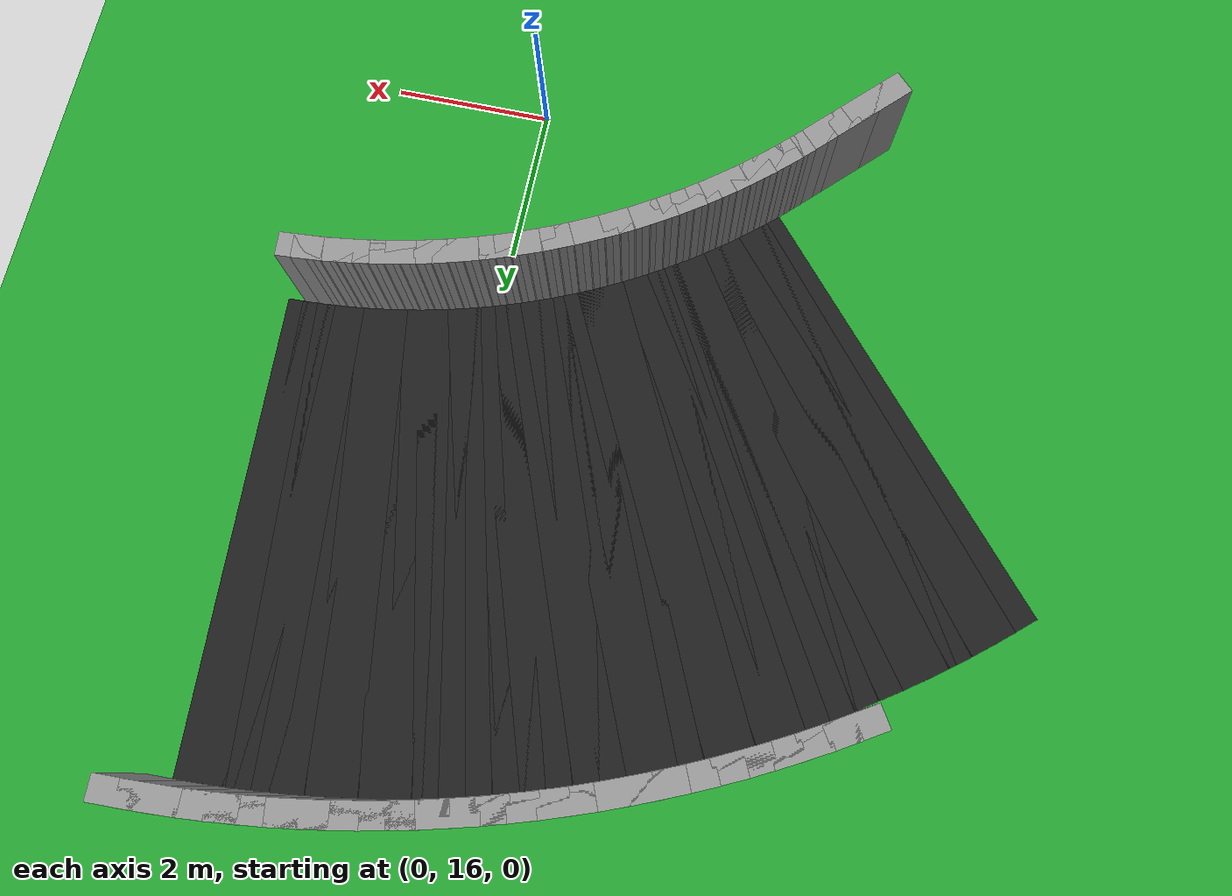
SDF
<sdf version="1.6">
 <world name="obstacle_asymturn">
  <include><uri>model://sun</uri></include>
  <model name="ground_plane">
   <static>true</static>
   <link name="link">
    <collision name="collision">
     <surface><friction><ode><mu>100</mu><mu2>50</mu2></ode></friction></surface>
     <geometry><plane><normal>0 0 1</normal><size>120 120</size></plane></geometry>
    </collision>
    <visual name="visual">
     <geometry><plane><normal>0 0 1</normal><size>120 120</size></plane></geometry>
     <material>
      <script><uri>file://media/materials/scripts/gazebo.material</uri><name>Gazebo/Green</name></script>
     </material>
    </visual>
   </link>
  </model>
  <model name="curbR_334">
   <static>true</static>
   <pose>2.359 25.305 0.750 0 0 -3.11059</pose>
   <link name="link">
    <collision name="collision"><geometry><box><size>0.673 0.300 1.500</size></box></geometry></collision>
    <visual name="visual">
     <geometry><box><size>0.673 0.300 1.500</size></box></geometry>
     <material>
      <script><uri>file://media/materials/scripts/gazebo.material</uri><name>Gazebo/Grey</name></script>
     </material>
    </visual>
   </link>
  </model>
  <model name="asphalt_335">
   <static>true</static>
   <pose>2.209 22.146 0.005 0 0 -3.08992</pose>
   <link name="link">
    <visual name="visual">
     <geometry><box><size>0.608 6.000 0.010</size></box></geometry>
     <material>
      <script><uri>file://media/materials/scripts/gazebo.material</uri><name>Gazebo/Black</name></script>
     </material>
    </visual>
   </link>
  </model>
  <model name="curbR_335">
   <static>true</static>
   <pose>2.046 25.292 0.750 0 0 -3.08992</pose>
   <link name="link">
    <collision name="collision"><geometry><box><size>0.673 0.300 1.500</size></box></geometry></collision>
    <visual name="visual">
     <geometry><box><size>0.673 0.300 1.500</size></box></geometry>
     <material>
      <script><uri>file://media/materials/scripts/gazebo.material</uri><name>Gazebo/Grey</name></script>
     </material>
    </visual>
   </link>
  </model>
  <model name="asphalt_336">
   <static>true</static>
   <pose>1.961 22.131 0.005 0 0 -3.06925</pose>
   <link name="link">
    <visual name="visual">
     <geometry><box><size>0.608 6.000 0.010</size></box></geometry>
     <material>
      <script><uri>file://media/materials/scripts/gazebo.material</uri><name>Gazebo/Black</name></script>
     </material>
    </visual>
   </link>
  </model>
  <model name="curbL_336">
   <static>true</static>
   <pose>2.189 18.989 0.750 0 0 -3.06925</pose>
   <link name="link">
    <collision name="collision"><geometry><box><size>0.543 0.300 1.500</size></box></geometry></collision>
    <visual name="visual">
     <geometry><box><size>0.543 0.300 1.500</size></box></geometry>
     <material>
      <script><uri>file://media/materials/scripts/gazebo.material</uri><name>Gazebo/Grey</name></script>
     </material>
    </visual>
   </link>
  </model>
  <model name="curbR_336">
   <static>true</static>
   <pose>1.733 25.273 0.750 0 0 -3.06925</pose>
   <link name="link">
    <collision name="collision"><geometry><box><size>0.673 0.300 1.500</size></box></geometry></collision>
    <visual name="visual">
     <geometry><box><size>0.673 0.300 1.500</size></box></geometry>
     <material>
      <script><uri>file://media/materials/scripts/gazebo.material</uri><name>Gazebo/Grey</name></script>
     </material>
    </visual>
   </link>
  </model>
  <model name="asphalt_337">
   <static>true</static>
   <pose>1.714 22.111 0.005 0 0 -3.04858</pose>
   <link name="link">
    <visual name="visual">
     <geometry><box><size>0.608 6.000 0.010</size></box></geometry>
     <material>
      <script><uri>file://media/materials/scripts/gazebo.material</uri><name>Gazebo/Black</name></script>
     </material>
    </visual>
   </link>
  </model>
  <model name="curbL_337">
   <static>true</static>
   <pose>2.007 18.974 0.750 0 0 -3.04858</pose>
   <link name="link">
    <collision name="collision"><geometry><box><size>0.543 0.300 1.500</size></box></geometry></collision>
    <visual name="visual">
     <geometry><box><size>0.543 0.300 1.500</size></box></geometry>
     <material>
      <script><uri>file://media/materials/scripts/gazebo.material</uri><name>Gazebo/Grey</name></script>
     </material>
    </visual>
   </link>
  </model>
  <model name="curbR_337">
   <static>true</static>
   <pose>1.421 25.247 0.750 0 0 -3.04858</pose>
   <link name="link">
    <collision name="collision"><geometry><box><size>0.673 0.300 1.500</size></box></geometry></collision>
    <visual name="visual">
     <geometry><box><size>0.673 0.300 1.500</size></box></geometry>
     <material>
      <script><uri>file://media/materials/scripts/gazebo.material</uri><name>Gazebo/Grey</name></script>
     </material>
    </visual>
   </link>
  </model>
  <model name="asphalt_338">
   <static>true</static>
   <pose>1.467 22.085 0.005 0 0 -3.02792</pose>
   <link name="link">
    <visual name="visual">
     <geometry><box><size>0.608 6.000 0.010</size></box></geometry>
     <material>
      <script><uri>file://media/materials/scripts/gazebo.material</uri><name>Gazebo/Black</name></script>
     </material>
    </visual>
   </link>
  </model>
  <model name="curbL_338">
   <static>true</static>
   <pose>1.825 18.955 0.750 0 0 -3.02792</pose>
   <link name="link">
    <collision name="collision"><geometry><box><size>0.543 0.300 1.500</size></box></geometry></collision>
    <visual name="visual">
     <geometry><box><size>0.543 0.300 1.500</size></box></geometry>
     <material>
      <script><uri>file://media/materials/scripts/gazebo.material</uri><name>Gazebo/Grey</name></script>
     </material>
    </visual>
   </link>
  </model>
  <model name="curbR_338">
   <static>true</static>
   <pose>1.110 25.214 0.750 0 0 -3.02792</pose>
   <link name="link">
    <collision name="collision"><geometry><box><size>0.673 0.300 1.500</size></box></geometry></collision>
    <visual name="visual">
     <geometry><box><size>0.673 0.300 1.500</size></box></geometry>
     <material>
      <script><uri>file://media/materials/scripts/gazebo.material</uri><name>Gazebo/Grey</name></script>
     </material>
    </visual>
   </link>
  </model>
  <model name="asphalt_339">
   <static>true</static>
   <pose>1.221 22.054 0.005 0 0 -3.00725</pose>
   <link name="link">
    <visual name="visual">
     <geometry><box><size>0.608 6.000 0.010</size></box></geometry>
     <material>
      <script><uri>file://media/materials/scripts/gazebo.material</uri><name>Gazebo/Black</name></script>
     </material>
    </visual>
   </link>
  </model>
  <model name="curbL_339">
   <static>true</static>
   <pose>1.643 18.933 0.750 0 0 -3.00725</pose>
   <link name="link">
    <collision name="collision"><geometry><box><size>0.543 0.300 1.500</size></box></geometry></collision>
    <visual name="visual">
     <geometry><box><size>0.543 0.300 1.500</size></box></geometry>
     <material>
      <script><uri>file://media/materials/scripts/gazebo.material</uri><name>Gazebo/Grey</name></script>
     </material>
    </visual>
   </link>
  </model>
  <model name="curbR_339">
   <static>true</static>
   <pose>0.799 25.176 0.750 0 0 -3.00725</pose>
   <link name="link">
    <collision name="collision"><geometry><box><size>0.673 0.300 1.500</size></box></geometry></collision>
    <visual name="visual">
     <geometry><box><size>0.673 0.300 1.500</size></box></geometry>
     <material>
      <script><uri>file://media/materials/scripts/gazebo.material</uri><name>Gazebo/Grey</name></script>
     </material>
    </visual>
   </link>
  </model>
  <model name="asphalt_340">
   <static>true</static>
   <pose>0.976 22.018 0.005 0 0 -2.98658</pose>
   <link name="link">
    <visual name="visual">
     <geometry><box><size>0.608 6.000 0.010</size></box></geometry>
     <material>
      <script><uri>file://media/materials/scripts/gazebo.material</uri><name>Gazebo/Black</name></script>
     </material>
    </visual>
   </link>
  </model>
  <model name="curbL_340">
   <static>true</static>
   <pose>1.462 18.906 0.750 0 0 -2.98658</pose>
   <link name="link">
    <collision name="collision"><geometry><box><size>0.543 0.300 1.500</size></box></geometry></collision>
    <visual name="visual">
     <geometry><box><size>0.543 0.300 1.500</size></box></geometry>
     <material>
      <script><uri>file://media/materials/scripts/gazebo.material</uri><name>Gazebo/Grey</name></script>
     </material>
    </visual>
   </link>
  </model>
  <model name="curbR_340">
   <static>true</static>
   <pose>0.489 25.131 0.750 0 0 -2.98658</pose>
   <link name="link">
    <collision name="collision"><geometry><box><size>0.673 0.300 1.500</size></box></geometry></collision>
    <visual name="visual">
     <geometry><box><size>0.673 0.300 1.500</size></box></geometry>
     <material>
      <script><uri>file://media/materials/scripts/gazebo.material</uri><name>Gazebo/Grey</name></script>
     </material>
    </visual>
   </link>
  </model>
  <model name="asphalt_341">
   <static>true</static>
   <pose>0.731 21.978 0.005 0 0 -2.96591</pose>
   <link name="link">
    <visual name="visual">
     <geometry><box><size>0.608 6.000 0.010</size></box></geometry>
     <material>
      <script><uri>file://media/materials/scripts/gazebo.material</uri><name>Gazebo/Black</name></script>
     </material>
    </visual>
   </link>
  </model>
  <model name="curbL_341">
   <static>true</static>
   <pose>1.282 18.876 0.750 0 0 -2.96591</pose>
   <link name="link">
    <collision name="collision"><geometry><box><size>0.543 0.300 1.500</size></box></geometry></collision>
    <visual name="visual">
     <geometry><box><size>0.543 0.300 1.500</size></box></geometry>
     <material>
      <script><uri>file://media/materials/scripts/gazebo.material</uri><name>Gazebo/Grey</name></script>
     </material>
    </visual>
   </link>
  </model>
  <model name="curbR_341">
   <static>true</static>
   <pose>0.181 25.079 0.750 0 0 -2.96591</pose>
   <link name="link">
    <collision name="collision"><geometry><box><size>0.673 0.300 1.500</size></box></geometry></collision>
    <visual name="visual">
     <geometry><box><size>0.673 0.300 1.500</size></box></geometry>
     <material>
      <script><uri>file://media/materials/scripts/gazebo.material</uri><name>Gazebo/Grey</name></script>
     </material>
    </visual>
   </link>
  </model>
  <model name="asphalt_342">
   <static>true</static>
   <pose>0.487 21.932 0.005 0 0 -2.94524</pose>
   <link name="link">
    <visual name="visual">
     <geometry><box><size>0.608 6.000 0.010</size></box></geometry>
     <material>
      <script><uri>file://media/materials/scripts/gazebo.material</uri><name>Gazebo/Black</name></script>
     </material>
    </visual>
   </link>
  </model>
  <model name="curbL_342">
   <static>true</static>
   <pose>1.102 18.842 0.750 0 0 -2.94524</pose>
   <link name="link">
    <collision name="collision"><geometry><box><size>0.543 0.300 1.500</size></box></geometry></collision>
    <visual name="visual">
     <geometry><box><size>0.543 0.300 1.500</size></box></geometry>
     <material>
      <script><uri>file://media/materials/scripts/gazebo.material</uri><name>Gazebo/Grey</name></script>
     </material>
    </visual>
   </link>
  </model>
  <model name="curbR_342">
   <static>true</static>
   <pose>-0.127 25.021 0.750 0 0 -2.94524</pose>
   <link name="link">
    <collision name="collision"><geometry><box><size>0.673 0.300 1.500</size></box></geometry></collision>
    <visual name="visual">
     <geometry><box><size>0.673 0.300 1.500</size></box></geometry>
     <material>
      <script><uri>file://media/materials/scripts/gazebo.material</uri><name>Gazebo/Grey</name></script>
     </material>
    </visual>
   </link>
  </model>
  <model name="asphalt_343">
   <static>true</static>
   <pose>0.245 21.881 0.005 0 0 -2.92457</pose>
   <link name="link">
    <visual name="visual">
     <geometry><box><size>0.608 6.000 0.010</size></box></geometry>
     <material>
      <script><uri>file://media/materials/scripts/gazebo.material</uri><name>Gazebo/Black</name></script>
     </material>
    </visual>
   </link>
  </model>
  <model name="curbL_343">
   <static>true</static>
   <pose>0.923 18.805 0.750 0 0 -2.92457</pose>
   <link name="link">
    <collision name="collision"><geometry><box><size>0.543 0.300 1.500</size></box></geometry></collision>
    <visual name="visual">
     <geometry><box><size>0.543 0.300 1.500</size></box></geometry>
     <material>
      <script><uri>file://media/materials/scripts/gazebo.material</uri><name>Gazebo/Grey</name></script>
     </material>
    </visual>
   </link>
  </model>
  <model name="curbR_343">
   <static>true</static>
   <pose>-0.434 24.957 0.750 0 0 -2.92457</pose>
   <link name="link">
    <collision name="collision"><geometry><box><size>0.673 0.300 1.500</size></box></geometry></collision>
    <visual name="visual">
     <geometry><box><size>0.673 0.300 1.500</size></box></geometry>
     <material>
      <script><uri>file://media/materials/scripts/gazebo.material</uri><name>Gazebo/Grey</name></script>
     </material>
    </visual>
   </link>
  </model>
  <model name="asphalt_344">
   <static>true</static>
   <pose>0.003 21.825 0.005 0 0 -2.90391</pose>
   <link name="link">
    <visual name="visual">
     <geometry><box><size>0.608 6.000 0.010</size></box></geometry>
     <material>
      <script><uri>file://media/materials/scripts/gazebo.material</uri><name>Gazebo/Black</name></script>
     </material>
    </visual>
   </link>
  </model>
  <model name="curbL_344">
   <static>true</static>
   <pose>0.745 18.764 0.750 0 0 -2.90391</pose>
   <link name="link">
    <collision name="collision"><geometry><box><size>0.543 0.300 1.500</size></box></geometry></collision>
    <visual name="visual">
     <geometry><box><size>0.543 0.300 1.500</size></box></geometry>
     <material>
      <script><uri>file://media/materials/scripts/gazebo.material</uri><name>Gazebo/Grey</name></script>
     </material>
    </visual>
   </link>
  </model>
  <model name="curbR_344">
   <static>true</static>
   <pose>-0.739 24.886 0.750 0 0 -2.90391</pose>
   <link name="link">
    <collision name="collision"><geometry><box><size>0.673 0.300 1.500</size></box></geometry></collision>
    <visual name="visual">
     <geometry><box><size>0.673 0.300 1.500</size></box></geometry>
     <material>
      <script><uri>file://media/materials/scripts/gazebo.material</uri><name>Gazebo/Grey</name></script>
     </material>
    </visual>
   </link>
  </model>
  <model name="asphalt_345">
   <static>true</static>
   <pose>-0.237 21.764 0.005 0 0 -2.88324</pose>
   <link name="link">
    <visual name="visual">
     <geometry><box><size>0.608 6.000 0.010</size></box></geometry>
     <material>
      <script><uri>file://media/materials/scripts/gazebo.material</uri><name>Gazebo/Black</name></script>
     </material>
    </visual>
   </link>
  </model>
  <model name="curbL_345">
   <static>true</static>
   <pose>0.567 18.719 0.750 0 0 -2.88324</pose>
   <link name="link">
    <collision name="collision"><geometry><box><size>0.543 0.300 1.500</size></box></geometry></collision>
    <visual name="visual">
     <geometry><box><size>0.543 0.300 1.500</size></box></geometry>
     <material>
      <script><uri>file://media/materials/scripts/gazebo.material</uri><name>Gazebo/Grey</name></script>
     </material>
    </visual>
   </link>
  </model>
  <model name="curbR_345">
   <static>true</static>
   <pose>-1.042 24.809 0.750 0 0 -2.88324</pose>
   <link name="link">
    <collision name="collision"><geometry><box><size>0.673 0.300 1.500</size></box></geometry></collision>
    <visual name="visual">
     <geometry><box><size>0.673 0.300 1.500</size></box></geometry>
     <material>
      <script><uri>file://media/materials/scripts/gazebo.material</uri><name>Gazebo/Grey</name></script>
     </material>
    </visual>
   </link>
  </model>
  <model name="asphalt_346">
   <static>true</static>
   <pose>-0.476 21.698 0.005 0 0 -2.86257</pose>
   <link name="link">
    <visual name="visual">
     <geometry><box><size>0.608 6.000 0.010</size></box></geometry>
     <material>
      <script><uri>file://media/materials/scripts/gazebo.material</uri><name>Gazebo/Black</name></script>
     </material>
    </visual>
   </link>
  </model>
  <model name="curbL_346">
   <static>true</static>
   <pose>0.391 18.670 0.750 0 0 -2.86257</pose>
   <link name="link">
    <collision name="collision"><geometry><box><size>0.543 0.300 1.500</size></box></geometry></collision>
    <visual name="visual">
     <geometry><box><size>0.543 0.300 1.500</size></box></geometry>
     <material>
      <script><uri>file://media/materials/scripts/gazebo.material</uri><name>Gazebo/Grey</name></script>
     </material>
    </visual>
   </link>
  </model>
  <model name="curbR_346">
   <static>true</static>
   <pose>-1.344 24.726 0.750 0 0 -2.86257</pose>
   <link name="link">
    <collision name="collision"><geometry><box><size>0.673 0.300 1.500</size></box></geometry></collision>
    <visual name="visual">
     <geometry><box><size>0.673 0.300 1.500</size></box></geometry>
     <material>
      <script><uri>file://media/materials/scripts/gazebo.material</uri><name>Gazebo/Grey</name></script>
     </material>
    </visual>
   </link>
  </model>
  <model name="asphalt_347">
   <static>true</static>
   <pose>-0.714 21.628 0.005 0 0 -2.84190</pose>
   <link name="link">
    <visual name="visual">
     <geometry><box><size>0.608 6.000 0.010</size></box></geometry>
     <material>
      <script><uri>file://media/materials/scripts/gazebo.material</uri><name>Gazebo/Black</name></script>
     </material>
    </visual>
   </link>
  </model>
  <model name="curbL_347">
   <static>true</static>
   <pose>0.216 18.618 0.750 0 0 -2.84190</pose>
   <link name="link">
    <collision name="collision"><geometry><box><size>0.543 0.300 1.500</size></box></geometry></collision>
    <visual name="visual">
     <geometry><box><size>0.543 0.300 1.500</size></box></geometry>
     <material>
      <script><uri>file://media/materials/scripts/gazebo.material</uri><name>Gazebo/Grey</name></script>
     </material>
    </visual>
   </link>
  </model>
  <model name="curbR_347">
   <static>true</static>
   <pose>-1.644 24.637 0.750 0 0 -2.84190</pose>
   <link name="link">
    <collision name="collision"><geometry><box><size>0.673 0.300 1.500</size></box></geometry></collision>
    <visual name="visual">
     <geometry><box><size>0.673 0.300 1.500</size></box></geometry>
     <material>
      <script><uri>file://media/materials/scripts/gazebo.material</uri><name>Gazebo/Grey</name></script>
     </material>
    </visual>
   </link>
  </model>
  <model name="asphalt_348">
   <static>true</static>
   <pose>-0.950 21.552 0.005 0 0 -2.82123</pose>
   <link name="link">
    <visual name="visual">
     <geometry><box><size>0.608 6.000 0.010</size></box></geometry>
     <material>
      <script><uri>file://media/materials/scripts/gazebo.material</uri><name>Gazebo/Black</name></script>
     </material>
    </visual>
   </link>
  </model>
  <model name="curbL_348">
   <static>true</static>
   <pose>0.042 18.562 0.750 0 0 -2.82123</pose>
   <link name="link">
    <collision name="collision"><geometry><box><size>0.543 0.300 1.500</size></box></geometry></collision>
    <visual name="visual">
     <geometry><box><size>0.543 0.300 1.500</size></box></geometry>
     <material>
      <script><uri>file://media/materials/scripts/gazebo.material</uri><name>Gazebo/Grey</name></script>
     </material>
    </visual>
   </link>
  </model>
  <model name="curbR_348">
   <static>true</static>
   <pose>-1.942 24.541 0.750 0 0 -2.82123</pose>
   <link name="link">
    <collision name="collision"><geometry><box><size>0.673 0.300 1.500</size></box></geometry></collision>
    <visual name="visual">
     <geometry><box><size>0.673 0.300 1.500</size></box></geometry>
     <material>
      <script><uri>file://media/materials/scripts/gazebo.material</uri><name>Gazebo/Grey</name></script>
     </material>
    </visual>
   </link>
  </model>
  <model name="asphalt_349">
   <static>true</static>
   <pose>-1.185 21.471 0.005 0 0 -2.80056</pose>
   <link name="link">
    <visual name="visual">
     <geometry><box><size>0.608 6.000 0.010</size></box></geometry>
     <material>
      <script><uri>file://media/materials/scripts/gazebo.material</uri><name>Gazebo/Black</name></script>
     </material>
    </visual>
   </link>
  </model>
  <model name="curbL_349">
   <static>true</static>
   <pose>-0.131 18.503 0.750 0 0 -2.80056</pose>
   <link name="link">
    <collision name="collision"><geometry><box><size>0.543 0.300 1.500</size></box></geometry></collision>
    <visual name="visual">
     <geometry><box><size>0.543 0.300 1.500</size></box></geometry>
     <material>
      <script><uri>file://media/materials/scripts/gazebo.material</uri><name>Gazebo/Grey</name></script>
     </material>
    </visual>
   </link>
  </model>
  <model name="curbR_349">
   <static>true</static>
   <pose>-2.238 24.440 0.750 0 0 -2.80056</pose>
   <link name="link">
    <collision name="collision"><geometry><box><size>0.673 0.300 1.500</size></box></geometry></collision>
    <visual name="visual">
     <geometry><box><size>0.673 0.300 1.500</size></box></geometry>
     <material>
      <script><uri>file://media/materials/scripts/gazebo.material</uri><name>Gazebo/Grey</name></script>
     </material>
    </visual>
   </link>
  </model>
  <model name="asphalt_350">
   <static>true</static>
   <pose>-1.418 21.386 0.005 0 0 -2.77990</pose>
   <link name="link">
    <visual name="visual">
     <geometry><box><size>0.608 6.000 0.010</size></box></geometry>
     <material>
      <script><uri>file://media/materials/scripts/gazebo.material</uri><name>Gazebo/Black</name></script>
     </material>
    </visual>
   </link>
  </model>
  <model name="curbL_350">
   <static>true</static>
   <pose>-0.303 18.440 0.750 0 0 -2.77990</pose>
   <link name="link">
    <collision name="collision"><geometry><box><size>0.543 0.300 1.500</size></box></geometry></collision>
    <visual name="visual">
     <geometry><box><size>0.543 0.300 1.500</size></box></geometry>
     <material>
      <script><uri>file://media/materials/scripts/gazebo.material</uri><name>Gazebo/Grey</name></script>
     </material>
    </visual>
   </link>
  </model>
  <model name="curbR_350">
   <static>true</static>
   <pose>-2.532 24.332 0.750 0 0 -2.77990</pose>
   <link name="link">
    <collision name="collision"><geometry><box><size>0.673 0.300 1.500</size></box></geometry></collision>
    <visual name="visual">
     <geometry><box><size>0.673 0.300 1.500</size></box></geometry>
     <material>
      <script><uri>file://media/materials/scripts/gazebo.material</uri><name>Gazebo/Grey</name></script>
     </material>
    </visual>
   </link>
  </model>
  <model name="asphalt_351">
   <static>true</static>
   <pose>-1.649 21.296 0.005 0 0 -2.75923</pose>
   <link name="link">
    <visual name="visual">
     <geometry><box><size>0.608 6.000 0.010</size></box></geometry>
     <material>
      <script><uri>file://media/materials/scripts/gazebo.material</uri><name>Gazebo/Black</name></script>
     </material>
    </visual>
   </link>
  </model>
  <model name="curbL_351">
   <static>true</static>
   <pose>-0.474 18.373 0.750 0 0 -2.75923</pose>
   <link name="link">
    <collision name="collision"><geometry><box><size>0.543 0.300 1.500</size></box></geometry></collision>
    <visual name="visual">
     <geometry><box><size>0.543 0.300 1.500</size></box></geometry>
     <material>
      <script><uri>file://media/materials/scripts/gazebo.material</uri><name>Gazebo/Grey</name></script>
     </material>
    </visual>
   </link>
  </model>
  <model name="curbR_351">
   <static>true</static>
   <pose>-2.824 24.218 0.750 0 0 -2.75923</pose>
   <link name="link">
    <collision name="collision"><geometry><box><size>0.673 0.300 1.500</size></box></geometry></collision>
    <visual name="visual">
     <geometry><box><size>0.673 0.300 1.500</size></box></geometry>
     <material>
      <script><uri>file://media/materials/scripts/gazebo.material</uri><name>Gazebo/Grey</name></script>
     </material>
    </visual>
   </link>
  </model>
  <model name="asphalt_352">
   <static>true</static>
   <pose>-1.878 21.201 0.005 0 0 -2.73856</pose>
   <link name="link">
    <visual name="visual">
     <geometry><box><size>0.608 6.000 0.010</size></box></geometry>
     <material>
      <script><uri>file://media/materials/scripts/gazebo.material</uri><name>Gazebo/Black</name></script>
     </material>
    </visual>
   </link>
  </model>
  <model name="curbL_352">
   <static>true</static>
   <pose>-0.643 18.303 0.750 0 0 -2.73856</pose>
   <link name="link">
    <collision name="collision"><geometry><box><size>0.543 0.300 1.500</size></box></geometry></collision>
    <visual name="visual">
     <geometry><box><size>0.543 0.300 1.500</size></box></geometry>
     <material>
      <script><uri>file://media/materials/scripts/gazebo.material</uri><name>Gazebo/Grey</name></script>
     </material>
    </visual>
   </link>
  </model>
  <model name="curbR_352">
   <static>true</static>
   <pose>-3.113 24.098 0.750 0 0 -2.73856</pose>
   <link name="link">
    <collision name="collision"><geometry><box><size>0.673 0.300 1.500</size></box></geometry></collision>
    <visual name="visual">
     <geometry><box><size>0.673 0.300 1.500</size></box></geometry>
     <material>
      <script><uri>file://media/materials/scripts/gazebo.material</uri><name>Gazebo/Grey</name></script>
     </material>
    </visual>
   </link>
  </model>
  <model name="asphalt_353">
   <static>true</static>
   <pose>-2.105 21.101 0.005 0 0 -2.71789</pose>
   <link name="link">
    <visual name="visual">
     <geometry><box><size>0.608 6.000 0.010</size></box></geometry>
     <material>
      <script><uri>file://media/materials/scripts/gazebo.material</uri><name>Gazebo/Black</name></script>
     </material>
    </visual>
   </link>
  </model>
  <model name="curbL_353">
   <static>true</static>
   <pose>-0.810 18.230 0.750 0 0 -2.71789</pose>
   <link name="link">
    <collision name="collision"><geometry><box><size>0.543 0.300 1.500</size></box></geometry></collision>
    <visual name="visual">
     <geometry><box><size>0.543 0.300 1.500</size></box></geometry>
     <material>
      <script><uri>file://media/materials/scripts/gazebo.material</uri><name>Gazebo/Grey</name></script>
     </material>
    </visual>
   </link>
  </model>
  <model name="curbR_353">
   <static>true</static>
   <pose>-3.400 23.973 0.750 0 0 -2.71789</pose>
   <link name="link">
    <collision name="collision"><geometry><box><size>0.673 0.300 1.500</size></box></geometry></collision>
    <visual name="visual">
     <geometry><box><size>0.673 0.300 1.500</size></box></geometry>
     <material>
      <script><uri>file://media/materials/scripts/gazebo.material</uri><name>Gazebo/Grey</name></script>
     </material>
    </visual>
   </link>
  </model>
  <model name="asphalt_354">
   <static>true</static>
   <pose>-2.330 20.997 0.005 0 0 -2.69722</pose>
   <link name="link">
    <visual name="visual">
     <geometry><box><size>0.608 6.000 0.010</size></box></geometry>
     <material>
      <script><uri>file://media/materials/scripts/gazebo.material</uri><name>Gazebo/Black</name></script>
     </material>
    </visual>
   </link>
  </model>
  <model name="curbL_354">
   <static>true</static>
   <pose>-0.976 18.153 0.750 0 0 -2.69722</pose>
   <link name="link">
    <collision name="collision"><geometry><box><size>0.543 0.300 1.500</size></box></geometry></collision>
    <visual name="visual">
     <geometry><box><size>0.543 0.300 1.500</size></box></geometry>
     <material>
      <script><uri>file://media/materials/scripts/gazebo.material</uri><name>Gazebo/Grey</name></script>
     </material>
    </visual>
   </link>
  </model>
  <model name="curbR_354">
   <static>true</static>
   <pose>-3.684 23.841 0.750 0 0 -2.69722</pose>
   <link name="link">
    <collision name="collision"><geometry><box><size>0.673 0.300 1.500</size></box></geometry></collision>
    <visual name="visual">
     <geometry><box><size>0.673 0.300 1.500</size></box></geometry>
     <material>
      <script><uri>file://media/materials/scripts/gazebo.material</uri><name>Gazebo/Grey</name></script>
     </material>
    </visual>
   </link>
  </model>
  <model name="asphalt_355">
   <static>true</static>
   <pose>-2.553 20.888 0.005 0 0 -2.67655</pose>
   <link name="link">
    <visual name="visual">
     <geometry><box><size>0.608 6.000 0.010</size></box></geometry>
     <material>
      <script><uri>file://media/materials/scripts/gazebo.material</uri><name>Gazebo/Black</name></script>
     </material>
    </visual>
   </link>
  </model>
  <model name="curbL_355">
   <static>true</static>
   <pose>-1.140 18.073 0.750 0 0 -2.67655</pose>
   <link name="link">
    <collision name="collision"><geometry><box><size>0.543 0.300 1.500</size></box></geometry></collision>
    <visual name="visual">
     <geometry><box><size>0.543 0.300 1.500</size></box></geometry>
     <material>
      <script><uri>file://media/materials/scripts/gazebo.material</uri><name>Gazebo/Grey</name></script>
     </material>
    </visual>
   </link>
  </model>
  <model name="curbR_355">
   <static>true</static>
   <pose>-3.965 23.703 0.750 0 0 -2.67655</pose>
   <link name="link">
    <collision name="collision"><geometry><box><size>0.673 0.300 1.500</size></box></geometry></collision>
    <visual name="visual">
     <geometry><box><size>0.673 0.300 1.500</size></box></geometry>
     <material>
      <script><uri>file://media/materials/scripts/gazebo.material</uri><name>Gazebo/Grey</name></script>
     </material>
    </visual>
   </link>
  </model>
  <model name="asphalt_356">
   <static>true</static>
   <pose>-2.773 20.775 0.005 0 0 -2.65589</pose>
   <link name="link">
    <visual name="visual">
     <geometry><box><size>0.608 6.000 0.010</size></box></geometry>
     <material>
      <script><uri>file://media/materials/scripts/gazebo.material</uri><name>Gazebo/Black</name></script>
     </material>
    </visual>
   </link>
  </model>
  <model name="curbL_356">
   <static>true</static>
   <pose>-1.303 17.989 0.750 0 0 -2.65589</pose>
   <link name="link">
    <collision name="collision"><geometry><box><size>0.543 0.300 1.500</size></box></geometry></collision>
    <visual name="visual">
     <geometry><box><size>0.543 0.300 1.500</size></box></geometry>
     <material>
      <script><uri>file://media/materials/scripts/gazebo.material</uri><name>Gazebo/Grey</name></script>
     </material>
    </visual>
   </link>
  </model>
  <model name="curbR_356">
   <static>true</static>
   <pose>-4.244 23.560 0.750 0 0 -2.65589</pose>
   <link name="link">
    <collision name="collision"><geometry><box><size>0.673 0.300 1.500</size></box></geometry></collision>
    <visual name="visual">
     <geometry><box><size>0.673 0.300 1.500</size></box></geometry>
     <material>
      <script><uri>file://media/materials/scripts/gazebo.material</uri><name>Gazebo/Grey</name></script>
     </material>
    </visual>
   </link>
  </model>
  <model name="asphalt_357">
   <static>true</static>
   <pose>-2.991 20.657 0.005 0 0 -2.63522</pose>
   <link name="link">
    <visual name="visual">
     <geometry><box><size>0.608 6.000 0.010</size></box></geometry>
     <material>
      <script><uri>file://media/materials/scripts/gazebo.material</uri><name>Gazebo/Black</name></script>
     </material>
    </visual>
   </link>
  </model>
  <model name="curbL_357">
   <static>true</static>
   <pose>-1.464 17.902 0.750 0 0 -2.63522</pose>
   <link name="link">
    <collision name="collision"><geometry><box><size>0.543 0.300 1.500</size></box></geometry></collision>
    <visual name="visual">
     <geometry><box><size>0.543 0.300 1.500</size></box></geometry>
     <material>
      <script><uri>file://media/materials/scripts/gazebo.material</uri><name>Gazebo/Grey</name></script>
     </material>
    </visual>
   </link>
  </model>
  <model name="curbR_357">
   <static>true</static>
   <pose>-4.519 23.411 0.750 0 0 -2.63522</pose>
   <link name="link">
    <collision name="collision"><geometry><box><size>0.673 0.300 1.500</size></box></geometry></collision>
    <visual name="visual">
     <geometry><box><size>0.673 0.300 1.500</size></box></geometry>
     <material>
      <script><uri>file://media/materials/scripts/gazebo.material</uri><name>Gazebo/Grey</name></script>
     </material>
    </visual>
   </link>
  </model>
  <model name="asphalt_358">
   <static>true</static>
   <pose>-3.207 20.534 0.005 0 0 -2.61455</pose>
   <link name="link">
    <visual name="visual">
     <geometry><box><size>0.608 6.000 0.010</size></box></geometry>
     <material>
      <script><uri>file://media/materials/scripts/gazebo.material</uri><name>Gazebo/Black</name></script>
     </material>
    </visual>
   </link>
  </model>
  <model name="curbL_358">
   <static>true</static>
   <pose>-1.623 17.812 0.750 0 0 -2.61455</pose>
   <link name="link">
    <collision name="collision"><geometry><box><size>0.543 0.300 1.500</size></box></geometry></collision>
    <visual name="visual">
     <geometry><box><size>0.543 0.300 1.500</size></box></geometry>
     <material>
      <script><uri>file://media/materials/scripts/gazebo.material</uri><name>Gazebo/Grey</name></script>
     </material>
    </visual>
   </link>
  </model>
  <model name="curbR_358">
   <static>true</static>
   <pose>-4.791 23.256 0.750 0 0 -2.61455</pose>
   <link name="link">
    <collision name="collision"><geometry><box><size>0.673 0.300 1.500</size></box></geometry></collision>
    <visual name="visual">
     <geometry><box><size>0.673 0.300 1.500</size></box></geometry>
     <material>
      <script><uri>file://media/materials/scripts/gazebo.material</uri><name>Gazebo/Grey</name></script>
     </material>
    </visual>
   </link>
  </model>
  <model name="asphalt_359">
   <static>true</static>
   <pose>-3.420 20.407 0.005 0 0 -2.59388</pose>
   <link name="link">
    <visual name="visual">
     <geometry><box><size>0.608 6.000 0.010</size></box></geometry>
     <material>
      <script><uri>file://media/materials/scripts/gazebo.material</uri><name>Gazebo/Black</name></script>
     </material>
    </visual>
   </link>
  </model>
  <model name="curbL_359">
   <static>true</static>
   <pose>-1.780 17.718 0.750 0 0 -2.59388</pose>
   <link name="link">
    <collision name="collision"><geometry><box><size>0.543 0.300 1.500</size></box></geometry></collision>
    <visual name="visual">
     <geometry><box><size>0.543 0.300 1.500</size></box></geometry>
     <material>
      <script><uri>file://media/materials/scripts/gazebo.material</uri><name>Gazebo/Grey</name></script>
     </material>
    </visual>
   </link>
  </model>
  <model name="curbR_359">
   <static>true</static>
   <pose>-5.060 23.096 0.750 0 0 -2.59388</pose>
   <link name="link">
    <collision name="collision"><geometry><box><size>0.673 0.300 1.500</size></box></geometry></collision>
    <visual name="visual">
     <geometry><box><size>0.673 0.300 1.500</size></box></geometry>
     <material>
      <script><uri>file://media/materials/scripts/gazebo.material</uri><name>Gazebo/Grey</name></script>
     </material>
    </visual>
   </link>
  </model>
  <model name="asphalt_360">
   <static>true</static>
   <pose>-3.631 20.276 0.005 0 0 -2.57321</pose>
   <link name="link">
    <visual name="visual">
     <geometry><box><size>0.608 6.000 0.010</size></box></geometry>
     <material>
      <script><uri>file://media/materials/scripts/gazebo.material</uri><name>Gazebo/Black</name></script>
     </material>
    </visual>
   </link>
  </model>
  <model name="curbL_360">
   <static>true</static>
   <pose>-1.935 17.621 0.750 0 0 -2.57321</pose>
   <link name="link">
    <collision name="collision"><geometry><box><size>0.543 0.300 1.500</size></box></geometry></collision>
    <visual name="visual">
     <geometry><box><size>0.543 0.300 1.500</size></box></geometry>
     <material>
      <script><uri>file://media/materials/scripts/gazebo.material</uri><name>Gazebo/Grey</name></script>
     </material>
    </visual>
   </link>
  </model>
  <model name="asphalt_361">
   <static>true</static>
   <pose>-3.838 20.140 0.005 0 0 -2.55254</pose>
   <link name="link">
    <visual name="visual">
     <geometry><box><size>0.608 6.000 0.010</size></box></geometry>
     <material>
      <script><uri>file://media/materials/scripts/gazebo.material</uri><name>Gazebo/Black</name></script>
     </material>
    </visual>
   </link>
  </model>
  <model name="curbL_361">
   <static>true</static>
   <pose>-2.088 17.521 0.750 0 0 -2.55254</pose>
   <link name="link">
    <collision name="collision"><geometry><box><size>0.543 0.300 1.500</size></box></geometry></collision>
    <visual name="visual">
     <geometry><box><size>0.543 0.300 1.500</size></box></geometry>
     <material>
      <script><uri>file://media/materials/scripts/gazebo.material</uri><name>Gazebo/Grey</name></script>
     </material>
    </visual>
   </link>
  </model>
  <model name="asphalt_362">
   <static>true</static>
   <pose>-4.043 20.000 0.005 0 0 -2.53188</pose>
   <link name="link">
    <visual name="visual">
     <geometry><box><size>0.608 6.000 0.010</size></box></geometry>
     <material>
      <script><uri>file://media/materials/scripts/gazebo.material</uri><name>Gazebo/Black</name></script>
     </material>
    </visual>
   </link>
  </model>
  <model name="curbL_362">
   <static>true</static>
   <pose>-2.239 17.418 0.750 0 0 -2.53188</pose>
   <link name="link">
    <collision name="collision"><geometry><box><size>0.543 0.300 1.500</size></box></geometry></collision>
    <visual name="visual">
     <geometry><box><size>0.543 0.300 1.500</size></box></geometry>
     <material>
      <script><uri>file://media/materials/scripts/gazebo.material</uri><name>Gazebo/Grey</name></script>
     </material>
    </visual>
   </link>
  </model>
  <model name="asphalt_363">
   <static>true</static>
   <pose>-4.245 19.856 0.005 0 0 -2.51121</pose>
   <link name="link">
    <visual name="visual">
     <geometry><box><size>0.608 6.000 0.010</size></box></geometry>
     <material>
      <script><uri>file://media/materials/scripts/gazebo.material</uri><name>Gazebo/Black</name></script>
     </material>
    </visual>
   </link>
  </model>
  <model name="curbL_363">
   <static>true</static>
   <pose>-2.388 17.312 0.750 0 0 -2.51121</pose>
   <link name="link">
    <collision name="collision"><geometry><box><size>0.543 0.300 1.500</size></box></geometry></collision>
    <visual name="visual">
     <geometry><box><size>0.543 0.300 1.500</size></box></geometry>
     <material>
      <script><uri>file://media/materials/scripts/gazebo.material</uri><name>Gazebo/Grey</name></script>
     </material>
    </visual>
   </link>
  </model>
  <model name="asphalt_364">
   <static>true</static>
   <pose>-4.444 19.708 0.005 0 0 -2.49054</pose>
   <link name="link">
    <visual name="visual">
     <geometry><box><size>0.608 6.000 0.010</size></box></geometry>
     <material>
      <script><uri>file://media/materials/scripts/gazebo.material</uri><name>Gazebo/Black</name></script>
     </material>
    </visual>
   </link>
  </model>
  <model name="curbL_364">
   <static>true</static>
   <pose>-2.535 17.202 0.750 0 0 -2.49054</pose>
   <link name="link">
    <collision name="collision"><geometry><box><size>0.543 0.300 1.500</size></box></geometry></collision>
    <visual name="visual">
     <geometry><box><size>0.543 0.300 1.500</size></box></geometry>
     <material>
      <script><uri>file://media/materials/scripts/gazebo.material</uri><name>Gazebo/Grey</name></script>
     </material>
    </visual>
   </link>
  </model>
  <model name="asphalt_365">
   <static>true</static>
   <pose>-4.639 19.555 0.005 0 0 -2.46987</pose>
   <link name="link">
    <visual name="visual">
     <geometry><box><size>0.608 6.000 0.010</size></box></geometry>
     <material>
      <script><uri>file://media/materials/scripts/gazebo.material</uri><name>Gazebo/Black</name></script>
     </material>
    </visual>
   </link>
  </model>
  <model name="curbL_365">
   <static>true</static>
   <pose>-2.679 17.090 0.750 0 0 -2.46987</pose>
   <link name="link">
    <collision name="collision"><geometry><box><size>0.543 0.300 1.500</size></box></geometry></collision>
    <visual name="visual">
     <geometry><box><size>0.543 0.300 1.500</size></box></geometry>
     <material>
      <script><uri>file://media/materials/scripts/gazebo.material</uri><name>Gazebo/Grey</name></script>
     </material>
    </visual>
   </link>
  </model>
  <model name="asphalt_366">
   <static>true</static>
   <pose>-4.832 19.399 0.005 0 0 -2.44920</pose>
   <link name="link">
    <visual name="visual">
     <geometry><box><size>0.608 6.000 0.010</size></box></geometry>
     <material>
      <script><uri>file://media/materials/scripts/gazebo.material</uri><name>Gazebo/Black</name></script>
     </material>
    </visual>
   </link>
  </model>
  <model name="curbL_366">
   <static>true</static>
   <pose>-2.821 16.975 0.750 0 0 -2.44920</pose>
   <link name="link">
    <collision name="collision"><geometry><box><size>0.543 0.300 1.500</size></box></geometry></collision>
    <visual name="visual">
     <geometry><box><size>0.543 0.300 1.500</size></box></geometry>
     <material>
      <script><uri>file://media/materials/scripts/gazebo.material</uri><name>Gazebo/Grey</name></script>
     </material>
    </visual>
   </link>
  </model>
  <model name="asphalt_367">
   <static>true</static>
   <pose>-5.021 19.239 0.005 0 0 -2.42853</pose>
   <link name="link">
    <visual name="visual">
     <geometry><box><size>0.608 6.000 0.010</size></box></geometry>
     <material>
      <script><uri>file://media/materials/scripts/gazebo.material</uri><name>Gazebo/Black</name></script>
     </material>
    </visual>
   </link>
  </model>
  <model name="curbL_367">
   <static>true</static>
   <pose>-2.961 16.856 0.750 0 0 -2.42853</pose>
   <link name="link">
    <collision name="collision"><geometry><box><size>0.543 0.300 1.500</size></box></geometry></collision>
    <visual name="visual">
     <geometry><box><size>0.543 0.300 1.500</size></box></geometry>
     <material>
      <script><uri>file://media/materials/scripts/gazebo.material</uri><name>Gazebo/Grey</name></script>
     </material>
    </visual>
   </link>
  </model>
  <model name="curbL_368">
   <static>true</static>
   <pose>-3.098 16.735 0.750 0 0 -2.40787</pose>
   <link name="link">
    <collision name="collision"><geometry><box><size>0.543 0.300 1.500</size></box></geometry></collision>
    <visual name="visual">
     <geometry><box><size>0.543 0.300 1.500</size></box></geometry>
     <material>
      <script><uri>file://media/materials/scripts/gazebo.material</uri><name>Gazebo/Grey</name></script>
     </material>
    </visual>
   </link>
  </model>
  <model name="curbL_369">
   <static>true</static>
   <pose>-3.232 16.611 0.750 0 0 -2.38720</pose>
   <link name="link">
    <collision name="collision"><geometry><box><size>0.543 0.300 1.500</size></box></geometry></collision>
    <visual name="visual">
     <geometry><box><size>0.543 0.300 1.500</size></box></geometry>
     <material>
      <script><uri>file://media/materials/scripts/gazebo.material</uri><name>Gazebo/Grey</name></script>
     </material>
    </visual>
   </link>
  </model>
  <model name="curbL_370">
   <static>true</static>
   <pose>-3.364 16.485 0.750 0 0 -2.36653</pose>
   <link name="link">
    <collision name="collision"><geometry><box><size>0.543 0.300 1.500</size></box></geometry></collision>
    <visual name="visual">
     <geometry><box><size>0.543 0.300 1.500</size></box></geometry>
     <material>
      <script><uri>file://media/materials/scripts/gazebo.material</uri><name>Gazebo/Grey</name></script>
     </material>
    </visual>
   </link>
  </model>
  <model name="curbL_371">
   <static>true</static>
   <pose>-3.518 16.332 0.750 0 0 -2.35619</pose>
   <link name="link">
    <collision name="collision"><geometry><box><size>0.610 0.300 1.500</size></box></geometry></collision>
    <visual name="visual">
     <geometry><box><size>0.610 0.300 1.500</size></box></geometry>
     <material>
      <script><uri>file://media/materials/scripts/gazebo.material</uri><name>Gazebo/Grey</name></script>
     </material>
    </visual>
   </link>
  </model>
  <model name="curbL_372">
   <static>true</static>
   <pose>-3.695 16.156 0.750 0 0 -2.35619</pose>
   <link name="link">
    <collision name="collision"><geometry><box><size>0.610 0.300 1.500</size></box></geometry></collision>
    <visual name="visual">
     <geometry><box><size>0.610 0.300 1.500</size></box></geometry>
     <material>
      <script><uri>file://media/materials/scripts/gazebo.material</uri><name>Gazebo/Grey</name></script>
     </material>
    </visual>
   </link>
  </model>
  <model name="curbL_373">
   <static>true</static>
   <pose>-3.872 15.979 0.750 0 0 -2.35619</pose>
   <link name="link">
    <collision name="collision"><geometry><box><size>0.610 0.300 1.500</size></box></geometry></collision>
    <visual name="visual">
     <geometry><box><size>0.610 0.300 1.500</size></box></geometry>
     <material>
      <script><uri>file://media/materials/scripts/gazebo.material</uri><name>Gazebo/Grey</name></script>
     </material>
    </visual>
   </link>
  </model>
  <model name="curbL_374">
   <static>true</static>
   <pose>-4.048 15.802 0.750 0 0 -2.35619</pose>
   <link name="link">
    <collision name="collision"><geometry><box><size>0.610 0.300 1.500</size></box></geometry></collision>
    <visual name="visual">
     <geometry><box><size>0.610 0.300 1.500</size></box></geometry>
     <material>
      <script><uri>file://media/materials/scripts/gazebo.material</uri><name>Gazebo/Grey</name></script>
     </material>
    </visual>
   </link>
  </model>
  <model name="curbL_375">
   <static>true</static>
   <pose>-4.225 15.625 0.750 0 0 -2.35619</pose>
   <link name="link">
    <collision name="collision"><geometry><box><size>0.610 0.300 1.500</size></box></geometry></collision>
    <visual name="visual">
     <geometry><box><size>0.610 0.300 1.500</size></box></geometry>
     <material>
      <script><uri>file://media/materials/scripts/gazebo.material</uri><name>Gazebo/Grey</name></script>
     </material>
    </visual>
   </link>
  </model>
 </world>
</sdf>
